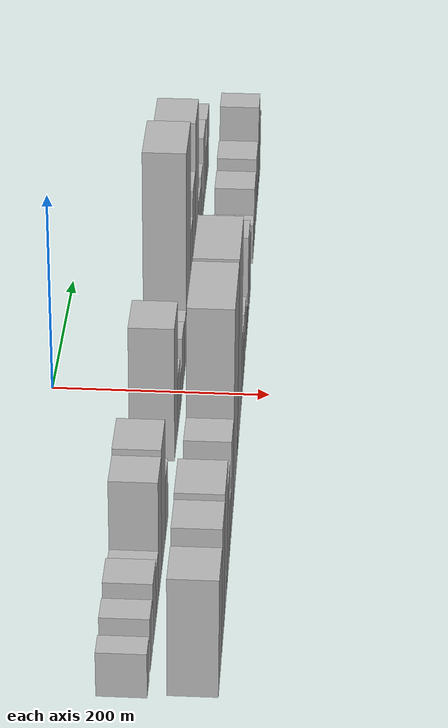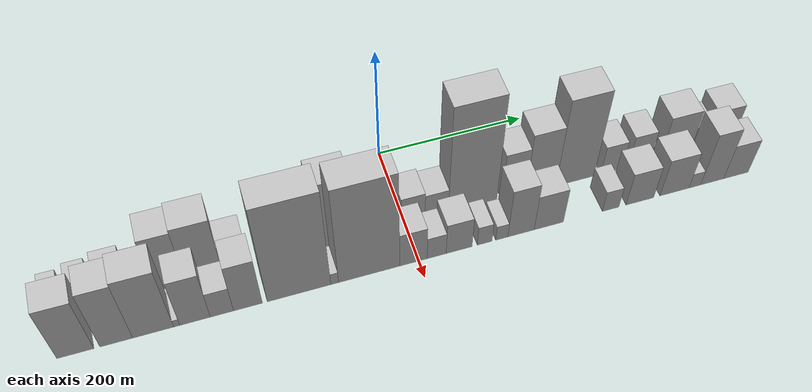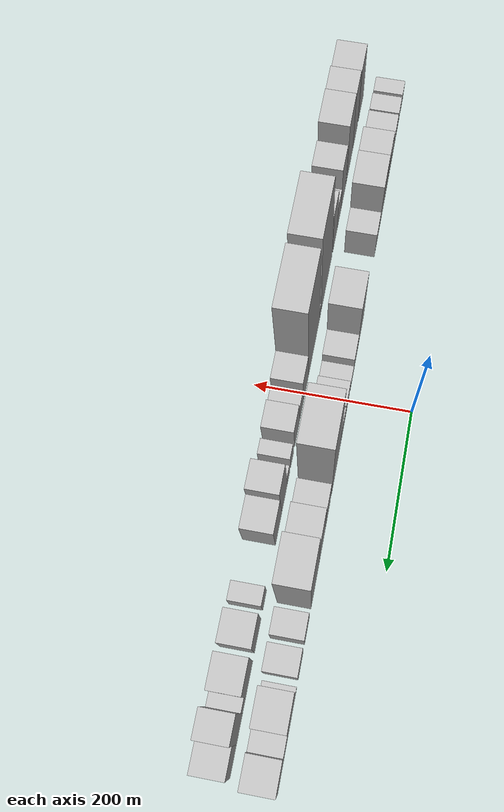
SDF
<sdf version="1.6">
 <world name="default">
  <scene>
   <sky><clouds><speed>12</speed></clouds></sky>
   <ambient>0.4 0.4 0.4 1</ambient>
   <background>0.7 0.7 0.7 1</background>
   <shadows>1</shadows>
  </scene>
  <gravity>0 0 -9.8066</gravity>
  <magnetic_field>6e-06 2.3e-05 -4.2e-05</magnetic_field>
  <physics default="0" name="default_physics" type="ode">
   <ode>
    <solver>
     <type>quick</type>
     <iters>10</iters>
     <sor>1.0</sor>
     <use_dynamic_moi_rescaling>0</use_dynamic_moi_rescaling>
    </solver>
    <constraints>
     <cfm>0</cfm>
     <erp>0.2</erp>
     <contact_max_correcting_vel>100</contact_max_correcting_vel>
     <contact_surface_layer>0.001</contact_surface_layer>
    </constraints>
   </ode>
   <max_step_size>0.004</max_step_size>
   <real_time_factor>1</real_time_factor>
   <real_time_update_rate>250</real_time_update_rate>
  </physics>
  <light name="sun" type="directional">
   <pose>0 0 10 0 0 0</pose>
   <diffuse>0.8 0.8 0.8 1</diffuse>
   <specular>0.2 0.2 0.2 1</specular>
   <attenuation>
    <range>1000</range>
    <constant>0.9</constant>
    <linear>0.01</linear>
    <quadratic>0.001</quadratic>
   </attenuation>
   <direction>-0.5 0.1 -0.9</direction>
  </light>
  <model name="building_1">
   <static>1</static>
   <pose>100.0000 -438.6478 0 0.000000 0.000000 0.000000</pose>
   <link name="link">
    <pose>0 0 21.00 0 0 0</pose>
    <collision name="collision"><geometry><box><size>40.0000 22.7043 42.0000</size></box></geometry></collision>
    <visual name="visual">
     <cast_shadows>0</cast_shadows>
     <geometry><box><size>40.0000 22.7043 42.0000</size></box></geometry>
     <material>
      <script>
       <uri>model://HANNAS_wall/materials/scripts</uri>
       <uri>model://HANNAS_wall/materials/textures</uri>
       <name>vrc/HANNAS_wall</name>
      </script>
     </material>
    </visual>
   </link>
  </model>
  <model name="building_2">
   <static>1</static>
   <pose>100.0000 -404.3533 0 0.000000 0.000000 0.000000</pose>
   <link name="link">
    <pose>0 0 25.50 0 0 0</pose>
    <collision name="collision"><geometry><box><size>40.0000 25.8848 51.0000</size></box></geometry></collision>
    <visual name="visual">
     <cast_shadows>0</cast_shadows>
     <geometry><box><size>40.0000 25.8848 51.0000</size></box></geometry>
     <material>
      <script>
       <uri>model://HANNAS_wall/materials/scripts</uri>
       <uri>model://HANNAS_wall/materials/textures</uri>
       <name>vrc/HANNAS_wall</name>
      </script>
     </material>
    </visual>
   </link>
  </model>
  <model name="building_3">
   <static>1</static>
   <pose>100.0000 -366.6174 0 0.000000 0.000000 0.000000</pose>
   <link name="link">
    <pose>0 0 30.00 0 0 0</pose>
    <collision name="collision"><geometry><box><size>40.0000 33.5868 60.0000</size></box></geometry></collision>
    <visual name="visual">
     <cast_shadows>0</cast_shadows>
     <geometry><box><size>40.0000 33.5868 60.0000</size></box></geometry>
     <material>
      <script>
       <uri>model://HANNAS_wall/materials/scripts</uri>
       <uri>model://HANNAS_wall/materials/textures</uri>
       <name>vrc/HANNAS_wall</name>
      </script>
     </material>
    </visual>
   </link>
  </model>
  <model name="building_4">
   <static>1</static>
   <pose>100.0000 -335.5202 0 0.000000 0.000000 0.000000</pose>
   <link name="link">
    <pose>0 0 24.00 0 0 0</pose>
    <collision name="collision"><geometry><box><size>40.0000 28.6076 48.0000</size></box></geometry></collision>
    <visual name="visual">
     <cast_shadows>0</cast_shadows>
     <geometry><box><size>40.0000 28.6076 48.0000</size></box></geometry>
     <material>
      <script>
       <uri>model://HANNAS_wall/materials/scripts</uri>
       <uri>model://HANNAS_wall/materials/textures</uri>
       <name>vrc/HANNAS_wall</name>
      </script>
     </material>
    </visual>
   </link>
  </model>
  <model name="building_5">
   <static>1</static>
   <pose>100.0000 -302.0740 0 0.000000 0.000000 0.000000</pose>
   <link name="link">
    <pose>0 0 57.00 0 0 0</pose>
    <collision name="collision"><geometry><box><size>40.0000 38.2849 114.0000</size></box></geometry></collision>
    <visual name="visual">
     <cast_shadows>0</cast_shadows>
     <geometry><box><size>40.0000 38.2849 114.0000</size></box></geometry>
     <material>
      <script>
       <uri>model://HANNAS_wall/materials/scripts</uri>
       <uri>model://HANNAS_wall/materials/textures</uri>
       <name>vrc/HANNAS_wall</name>
      </script>
     </material>
    </visual>
   </link>
  </model>
  <model name="building_6">
   <static>1</static>
   <pose>100.0000 -259.7447 0 0.000000 0.000000 0.000000</pose>
   <link name="link">
    <pose>0 0 60.00 0 0 0</pose>
    <collision name="collision"><geometry><box><size>40.0000 46.3737 120.0000</size></box></geometry></collision>
    <visual name="visual">
     <cast_shadows>0</cast_shadows>
     <geometry><box><size>40.0000 46.3737 120.0000</size></box></geometry>
     <material>
      <script>
       <uri>model://HANNAS_wall/materials/scripts</uri>
       <uri>model://HANNAS_wall/materials/textures</uri>
       <name>vrc/HANNAS_wall</name>
      </script>
     </material>
    </visual>
   </link>
  </model>
  <model name="building_7">
   <static>1</static>
   <pose>100.0000 -219.7180 0 0.000000 0.000000 0.000000</pose>
   <link name="link">
    <pose>0 0 30.00 0 0 0</pose>
    <collision name="collision"><geometry><box><size>40.0000 33.6798 60.0000</size></box></geometry></collision>
    <visual name="visual">
     <cast_shadows>0</cast_shadows>
     <geometry><box><size>40.0000 33.6798 60.0000</size></box></geometry>
     <material>
      <script>
       <uri>model://HANNAS_wall/materials/scripts</uri>
       <uri>model://HANNAS_wall/materials/textures</uri>
       <name>vrc/HANNAS_wall</name>
      </script>
     </material>
    </visual>
   </link>
  </model>
  <model name="building_8">
   <static>1</static>
   <pose>100.0000 -91.8694 0 0.000000 0.000000 0.000000</pose>
   <link name="link">
    <pose>0 0 67.50 0 0 0</pose>
    <collision name="collision"><geometry><box><size>40.0000 48.0058 135.0000</size></box></geometry></collision>
    <visual name="visual">
     <cast_shadows>0</cast_shadows>
     <geometry><box><size>40.0000 48.0058 135.0000</size></box></geometry>
     <material>
      <script>
       <uri>model://HANNAS_wall/materials/scripts</uri>
       <uri>model://HANNAS_wall/materials/textures</uri>
       <name>vrc/HANNAS_wall</name>
      </script>
     </material>
    </visual>
   </link>
  </model>
  <model name="building_9">
   <static>1</static>
   <pose>100.0000 -51.0899 0 0.000000 0.000000 0.000000</pose>
   <link name="link">
    <pose>0 0 28.50 0 0 0</pose>
    <collision name="collision"><geometry><box><size>40.0000 33.5532 57.0000</size></box></geometry></collision>
    <visual name="visual">
     <cast_shadows>0</cast_shadows>
     <geometry><box><size>40.0000 33.5532 57.0000</size></box></geometry>
     <material>
      <script>
       <uri>model://HANNAS_wall/materials/scripts</uri>
       <uri>model://HANNAS_wall/materials/textures</uri>
       <name>vrc/HANNAS_wall</name>
      </script>
     </material>
    </visual>
   </link>
  </model>
  <model name="building_10">
   <static>1</static>
   <pose>100.0000 -23.6254 0 0.000000 0.000000 0.000000</pose>
   <link name="link">
    <pose>0 0 18.00 0 0 0</pose>
    <collision name="collision"><geometry><box><size>40.0000 21.3760 36.0000</size></box></geometry></collision>
    <visual name="visual">
     <cast_shadows>0</cast_shadows>
     <geometry><box><size>40.0000 21.3760 36.0000</size></box></geometry>
     <material>
      <script>
       <uri>model://HANNAS_wall/materials/scripts</uri>
       <uri>model://HANNAS_wall/materials/textures</uri>
       <name>vrc/HANNAS_wall</name>
      </script>
     </material>
    </visual>
   </link>
  </model>
  <model name="building_11">
   <static>1</static>
   <pose>100.0000 9.8752 0 0.000000 0.000000 0.000000</pose>
   <link name="link">
    <pose>0 0 30.00 0 0 0</pose>
    <collision name="collision"><geometry><box><size>40.0000 31.6250 60.0000</size></box></geometry></collision>
    <visual name="visual">
     <cast_shadows>0</cast_shadows>
     <geometry><box><size>40.0000 31.6250 60.0000</size></box></geometry>
     <material>
      <script>
       <uri>model://HANNAS_wall/materials/scripts</uri>
       <uri>model://HANNAS_wall/materials/textures</uri>
       <name>vrc/HANNAS_wall</name>
      </script>
     </material>
    </visual>
   </link>
  </model>
  <model name="building_12">
   <static>1</static>
   <pose>100.0000 41.3546 0 0.000000 0.000000 0.000000</pose>
   <link name="link">
    <pose>0 0 27.00 0 0 0</pose>
    <collision name="collision"><geometry><box><size>40.0000 31.3338 54.0000</size></box></geometry></collision>
    <visual name="visual">
     <cast_shadows>0</cast_shadows>
     <geometry><box><size>40.0000 31.3338 54.0000</size></box></geometry>
     <material>
      <script>
       <uri>model://HANNAS_wall/materials/scripts</uri>
       <uri>model://HANNAS_wall/materials/textures</uri>
       <name>vrc/HANNAS_wall</name>
      </script>
     </material>
    </visual>
   </link>
  </model>
  <model name="building_13">
   <static>1</static>
   <pose>100.0000 89.9207 0 0.000000 0.000000 0.000000</pose>
   <link name="link">
    <pose>0 0 108.00 0 0 0</pose>
    <collision name="collision"><geometry><box><size>40.0000 65.7983 216.0000</size></box></geometry></collision>
    <visual name="visual">
     <cast_shadows>0</cast_shadows>
     <geometry><box><size>40.0000 65.7983 216.0000</size></box></geometry>
     <material>
      <script>
       <uri>model://HANNAS_wall/materials/scripts</uri>
       <uri>model://HANNAS_wall/materials/textures</uri>
       <name>vrc/HANNAS_wall</name>
      </script>
     </material>
    </visual>
   </link>
  </model>
  <model name="building_14">
   <static>1</static>
   <pose>100.0000 146.4319 0 0.000000 0.000000 0.000000</pose>
   <link name="link">
    <pose>0 0 48.00 0 0 0</pose>
    <collision name="collision"><geometry><box><size>40.0000 33.2240 96.0000</size></box></geometry></collision>
    <visual name="visual">
     <cast_shadows>0</cast_shadows>
     <geometry><box><size>40.0000 33.2240 96.0000</size></box></geometry>
     <material>
      <script>
       <uri>model://HANNAS_wall/materials/scripts</uri>
       <uri>model://HANNAS_wall/materials/textures</uri>
       <name>vrc/HANNAS_wall</name>
      </script>
     </material>
    </visual>
   </link>
  </model>
  <model name="building_15">
   <static>1</static>
   <pose>100.0000 184.0171 0 0.000000 0.000000 0.000000</pose>
   <link name="link">
    <pose>0 0 61.50 0 0 0</pose>
    <collision name="collision"><geometry><box><size>40.0000 41.9464 123.0000</size></box></geometry></collision>
    <visual name="visual">
     <cast_shadows>0</cast_shadows>
     <geometry><box><size>40.0000 41.9464 123.0000</size></box></geometry>
     <material>
      <script>
       <uri>model://HANNAS_wall/materials/scripts</uri>
       <uri>model://HANNAS_wall/materials/textures</uri>
       <name>vrc/HANNAS_wall</name>
      </script>
     </material>
    </visual>
   </link>
  </model>
  <model name="building_16">
   <static>1</static>
   <pose>100.0000 231.9052 0 0.000000 0.000000 0.000000</pose>
   <link name="link">
    <pose>0 0 87.00 0 0 0</pose>
    <collision name="collision"><geometry><box><size>40.0000 53.8299 174.0000</size></box></geometry></collision>
    <visual name="visual">
     <cast_shadows>0</cast_shadows>
     <geometry><box><size>40.0000 53.8299 174.0000</size></box></geometry>
     <material>
      <script>
       <uri>model://HANNAS_wall/materials/scripts</uri>
       <uri>model://HANNAS_wall/materials/textures</uri>
       <name>vrc/HANNAS_wall</name>
      </script>
     </material>
    </visual>
   </link>
  </model>
  <model name="building_17">
   <static>1</static>
   <pose>100.0000 284.2796 0 0.000000 0.000000 0.000000</pose>
   <link name="link">
    <pose>0 0 28.50 0 0 0</pose>
    <collision name="collision"><geometry><box><size>40.0000 30.9188 57.0000</size></box></geometry></collision>
    <visual name="visual">
     <cast_shadows>0</cast_shadows>
     <geometry><box><size>40.0000 30.9188 57.0000</size></box></geometry>
     <material>
      <script>
       <uri>model://HANNAS_wall/materials/scripts</uri>
       <uri>model://HANNAS_wall/materials/textures</uri>
       <name>vrc/HANNAS_wall</name>
      </script>
     </material>
    </visual>
   </link>
  </model>
  <model name="building_18">
   <static>1</static>
   <pose>100.0000 323.6369 0 0.000000 0.000000 0.000000</pose>
   <link name="link">
    <pose>0 0 31.50 0 0 0</pose>
    <collision name="collision"><geometry><box><size>40.0000 31.7958 63.0000</size></box></geometry></collision>
    <visual name="visual">
     <cast_shadows>0</cast_shadows>
     <geometry><box><size>40.0000 31.7958 63.0000</size></box></geometry>
     <material>
      <script>
       <uri>model://HANNAS_wall/materials/scripts</uri>
       <uri>model://HANNAS_wall/materials/textures</uri>
       <name>vrc/HANNAS_wall</name>
      </script>
     </material>
    </visual>
   </link>
  </model>
  <model name="building_19">
   <static>1</static>
   <pose>100.0000 351.0465 0 0.000000 0.000000 0.000000</pose>
   <link name="link">
    <pose>0 0 7.50 0 0 0</pose>
    <collision name="collision"><geometry><box><size>40.0000 7.0234 15.0000</size></box></geometry></collision>
    <visual name="visual">
     <cast_shadows>0</cast_shadows>
     <geometry><box><size>40.0000 7.0234 15.0000</size></box></geometry>
     <material>
      <script>
       <uri>model://HANNAS_wall/materials/scripts</uri>
       <uri>model://HANNAS_wall/materials/textures</uri>
       <name>vrc/HANNAS_wall</name>
      </script>
     </material>
    </visual>
   </link>
  </model>
  <model name="building_20">
   <static>1</static>
   <pose>100.0000 376.5104 0 0.000000 0.000000 0.000000</pose>
   <link name="link">
    <pose>0 0 42.00 0 0 0</pose>
    <collision name="collision"><geometry><box><size>40.0000 43.9043 84.0000</size></box></geometry></collision>
    <visual name="visual">
     <cast_shadows>0</cast_shadows>
     <geometry><box><size>40.0000 43.9043 84.0000</size></box></geometry>
     <material>
      <script>
       <uri>model://HANNAS_wall/materials/scripts</uri>
       <uri>model://HANNAS_wall/materials/textures</uri>
       <name>vrc/HANNAS_wall</name>
      </script>
     </material>
    </visual>
   </link>
  </model>
  <model name="building_21">
   <static>1</static>
   <pose>100.0000 410.7275 0 0.000000 0.000000 0.000000</pose>
   <link name="link">
    <pose>0 0 24.00 0 0 0</pose>
    <collision name="collision"><geometry><box><size>40.0000 24.5299 48.0000</size></box></geometry></collision>
    <visual name="visual">
     <cast_shadows>0</cast_shadows>
     <geometry><box><size>40.0000 24.5299 48.0000</size></box></geometry>
     <material>
      <script>
       <uri>model://HANNAS_wall/materials/scripts</uri>
       <uri>model://HANNAS_wall/materials/textures</uri>
       <name>vrc/HANNAS_wall</name>
      </script>
     </material>
    </visual>
   </link>
  </model>
  <model name="building_22">
   <static>1</static>
   <pose>100.0000 442.3982 0 0.000000 0.000000 0.000000</pose>
   <link name="link">
    <pose>0 0 36.00 0 0 0</pose>
    <collision name="collision"><geometry><box><size>40.0000 38.8115 72.0000</size></box></geometry></collision>
    <visual name="visual">
     <cast_shadows>0</cast_shadows>
     <geometry><box><size>40.0000 38.8115 72.0000</size></box></geometry>
     <material>
      <script>
       <uri>model://HANNAS_wall/materials/scripts</uri>
       <uri>model://HANNAS_wall/materials/textures</uri>
       <name>vrc/HANNAS_wall</name>
      </script>
     </material>
    </visual>
   </link>
  </model>
  <model name="building_23">
   <static>1</static>
   <pose>155.0000 -424.3160 0 0.000000 0.000000 0.000000</pose>
   <link name="link">
    <pose>0 0 55.50 0 0 0</pose>
    <collision name="collision"><geometry><box><size>40.0000 43.3680 111.0000</size></box></geometry></collision>
    <visual name="visual">
     <cast_shadows>0</cast_shadows>
     <geometry><box><size>40.0000 43.3680 111.0000</size></box></geometry>
     <material>
      <script>
       <uri>model://HANNAS_wall/materials/scripts</uri>
       <uri>model://HANNAS_wall/materials/textures</uri>
       <name>vrc/HANNAS_wall</name>
      </script>
     </material>
    </visual>
   </link>
  </model>
  <model name="building_24">
   <static>1</static>
   <pose>155.0000 -376.1511 0 0.000000 0.000000 0.000000</pose>
   <link name="link">
    <pose>0 0 61.50 0 0 0</pose>
    <collision name="collision"><geometry><box><size>40.0000 38.9617 123.0000</size></box></geometry></collision>
    <visual name="visual">
     <cast_shadows>0</cast_shadows>
     <geometry><box><size>40.0000 38.9617 123.0000</size></box></geometry>
     <material>
      <script>
       <uri>model://HANNAS_wall/materials/scripts</uri>
       <uri>model://HANNAS_wall/materials/textures</uri>
       <name>vrc/HANNAS_wall</name>
      </script>
     </material>
    </visual>
   </link>
  </model>
  <model name="building_25">
   <static>1</static>
   <pose>155.0000 -332.1930 0 0.000000 0.000000 0.000000</pose>
   <link name="link">
    <pose>0 0 64.50 0 0 0</pose>
    <collision name="collision"><geometry><box><size>40.0000 48.9547 129.0000</size></box></geometry></collision>
    <visual name="visual">
     <cast_shadows>0</cast_shadows>
     <geometry><box><size>40.0000 48.9547 129.0000</size></box></geometry>
     <material>
      <script>
       <uri>model://HANNAS_wall/materials/scripts</uri>
       <uri>model://HANNAS_wall/materials/textures</uri>
       <name>vrc/HANNAS_wall</name>
      </script>
     </material>
    </visual>
   </link>
  </model>
  <model name="building_26">
   <static>1</static>
   <pose>155.0000 -304.0631 0 0.000000 0.000000 0.000000</pose>
   <link name="link">
    <pose>0 0 7.50 0 0 0</pose>
    <collision name="collision"><geometry><box><size>40.0000 7.3051 15.0000</size></box></geometry></collision>
    <visual name="visual">
     <cast_shadows>0</cast_shadows>
     <geometry><box><size>40.0000 7.3051 15.0000</size></box></geometry>
     <material>
      <script>
       <uri>model://HANNAS_wall/materials/scripts</uri>
       <uri>model://HANNAS_wall/materials/textures</uri>
       <name>vrc/HANNAS_wall</name>
      </script>
     </material>
    </visual>
   </link>
  </model>
  <model name="building_27">
   <static>1</static>
   <pose>155.0000 -281.8388 0 0.000000 0.000000 0.000000</pose>
   <link name="link">
    <pose>0 0 49.50 0 0 0</pose>
    <collision name="collision"><geometry><box><size>40.0000 37.1433 99.0000</size></box></geometry></collision>
    <visual name="visual">
     <cast_shadows>0</cast_shadows>
     <geometry><box><size>40.0000 37.1433 99.0000</size></box></geometry>
     <material>
      <script>
       <uri>model://HANNAS_wall/materials/scripts</uri>
       <uri>model://HANNAS_wall/materials/textures</uri>
       <name>vrc/HANNAS_wall</name>
      </script>
     </material>
    </visual>
   </link>
  </model>
  <model name="building_28">
   <static>1</static>
   <pose>155.0000 -249.0591 0 0.000000 0.000000 0.000000</pose>
   <link name="link">
    <pose>0 0 27.00 0 0 0</pose>
    <collision name="collision"><geometry><box><size>40.0000 28.4162 54.0000</size></box></geometry></collision>
    <visual name="visual">
     <cast_shadows>0</cast_shadows>
     <geometry><box><size>40.0000 28.4162 54.0000</size></box></geometry>
     <material>
      <script>
       <uri>model://HANNAS_wall/materials/scripts</uri>
       <uri>model://HANNAS_wall/materials/textures</uri>
       <name>vrc/HANNAS_wall</name>
      </script>
     </material>
    </visual>
   </link>
  </model>
  <model name="building_29">
   <static>1</static>
   <pose>155.0000 -217.0314 0 0.000000 0.000000 0.000000</pose>
   <link name="link">
    <pose>0 0 49.50 0 0 0</pose>
    <collision name="collision"><geometry><box><size>40.0000 35.6392 99.0000</size></box></geometry></collision>
    <visual name="visual">
     <cast_shadows>0</cast_shadows>
     <geometry><box><size>40.0000 35.6392 99.0000</size></box></geometry>
     <material>
      <script>
       <uri>model://HANNAS_wall/materials/scripts</uri>
       <uri>model://HANNAS_wall/materials/textures</uri>
       <name>vrc/HANNAS_wall</name>
      </script>
     </material>
    </visual>
   </link>
  </model>
  <model name="building_30">
   <static>1</static>
   <pose>155.0000 -153.2824 0 0.000000 0.000000 0.000000</pose>
   <link name="link">
    <pose>0 0 100.50 0 0 0</pose>
    <collision name="collision"><geometry><box><size>40.0000 79.8588 201.0000</size></box></geometry></collision>
    <visual name="visual">
     <cast_shadows>0</cast_shadows>
     <geometry><box><size>40.0000 79.8588 201.0000</size></box></geometry>
     <material>
      <script>
       <uri>model://HANNAS_wall/materials/scripts</uri>
       <uri>model://HANNAS_wall/materials/textures</uri>
       <name>vrc/HANNAS_wall</name>
      </script>
     </material>
    </visual>
   </link>
  </model>
  <model name="building_31">
   <static>1</static>
   <pose>155.0000 -108.4346 0 0.000000 0.000000 0.000000</pose>
   <link name="link">
    <pose>0 0 12.00 0 0 0</pose>
    <collision name="collision"><geometry><box><size>40.0000 9.8368 24.0000</size></box></geometry></collision>
    <visual name="visual">
     <cast_shadows>0</cast_shadows>
     <geometry><box><size>40.0000 9.8368 24.0000</size></box></geometry>
     <material>
      <script>
       <uri>model://HANNAS_wall/materials/scripts</uri>
       <uri>model://HANNAS_wall/materials/textures</uri>
       <name>vrc/HANNAS_wall</name>
      </script>
     </material>
    </visual>
   </link>
  </model>
  <model name="building_32">
   <static>1</static>
   <pose>155.0000 -64.1178 0 0.000000 0.000000 0.000000</pose>
   <link name="link">
    <pose>0 0 99.00 0 0 0</pose>
    <collision name="collision"><geometry><box><size>40.0000 78.7969 198.0000</size></box></geometry></collision>
    <visual name="visual">
     <cast_shadows>0</cast_shadows>
     <geometry><box><size>40.0000 78.7969 198.0000</size></box></geometry>
     <material>
      <script>
       <uri>model://HANNAS_wall/materials/scripts</uri>
       <uri>model://HANNAS_wall/materials/textures</uri>
       <name>vrc/HANNAS_wall</name>
      </script>
     </material>
    </visual>
   </link>
  </model>
  <model name="building_33">
   <static>1</static>
   <pose>155.0000 -6.9493 0 0.000000 0.000000 0.000000</pose>
   <link name="link">
    <pose>0 0 34.50 0 0 0</pose>
    <collision name="collision"><geometry><box><size>40.0000 35.5400 69.0000</size></box></geometry></collision>
    <visual name="visual">
     <cast_shadows>0</cast_shadows>
     <geometry><box><size>40.0000 35.5400 69.0000</size></box></geometry>
     <material>
      <script>
       <uri>model://HANNAS_wall/materials/scripts</uri>
       <uri>model://HANNAS_wall/materials/textures</uri>
       <name>vrc/HANNAS_wall</name>
      </script>
     </material>
    </visual>
   </link>
  </model>
  <model name="building_34">
   <static>1</static>
   <pose>155.0000 23.3013 0 0.000000 0.000000 0.000000</pose>
   <link name="link">
    <pose>0 0 22.50 0 0 0</pose>
    <collision name="collision"><geometry><box><size>40.0000 24.9613 45.0000</size></box></geometry></collision>
    <visual name="visual">
     <cast_shadows>0</cast_shadows>
     <geometry><box><size>40.0000 24.9613 45.0000</size></box></geometry>
     <material>
      <script>
       <uri>model://HANNAS_wall/materials/scripts</uri>
       <uri>model://HANNAS_wall/materials/textures</uri>
       <name>vrc/HANNAS_wall</name>
      </script>
     </material>
    </visual>
   </link>
  </model>
  <model name="building_35">
   <static>1</static>
   <pose>155.0000 52.9590 0 0.000000 0.000000 0.000000</pose>
   <link name="link">
    <pose>0 0 31.50 0 0 0</pose>
    <collision name="collision"><geometry><box><size>40.0000 34.3541 63.0000</size></box></geometry></collision>
    <visual name="visual">
     <cast_shadows>0</cast_shadows>
     <geometry><box><size>40.0000 34.3541 63.0000</size></box></geometry>
     <material>
      <script>
       <uri>model://HANNAS_wall/materials/scripts</uri>
       <uri>model://HANNAS_wall/materials/textures</uri>
       <name>vrc/HANNAS_wall</name>
      </script>
     </material>
    </visual>
   </link>
  </model>
  <model name="building_36">
   <static>1</static>
   <pose>155.0000 86.9186 0 0.000000 0.000000 0.000000</pose>
   <link name="link">
    <pose>0 0 19.50 0 0 0</pose>
    <collision name="collision"><geometry><box><size>40.0000 19.5653 39.0000</size></box></geometry></collision>
    <visual name="visual">
     <cast_shadows>0</cast_shadows>
     <geometry><box><size>40.0000 19.5653 39.0000</size></box></geometry>
     <material>
      <script>
       <uri>model://HANNAS_wall/materials/scripts</uri>
       <uri>model://HANNAS_wall/materials/textures</uri>
       <name>vrc/HANNAS_wall</name>
      </script>
     </material>
    </visual>
   </link>
  </model>
  <model name="building_37">
   <static>1</static>
   <pose>155.0000 109.8330 0 0.000000 0.000000 0.000000</pose>
   <link name="link">
    <pose>0 0 15.00 0 0 0</pose>
    <collision name="collision"><geometry><box><size>40.0000 16.2634 30.0000</size></box></geometry></collision>
    <visual name="visual">
     <cast_shadows>0</cast_shadows>
     <geometry><box><size>40.0000 16.2634 30.0000</size></box></geometry>
     <material>
      <script>
       <uri>model://HANNAS_wall/materials/scripts</uri>
       <uri>model://HANNAS_wall/materials/textures</uri>
       <name>vrc/HANNAS_wall</name>
      </script>
     </material>
    </visual>
   </link>
  </model>
  <model name="building_38">
   <static>1</static>
   <pose>155.0000 135.7820 0 0.000000 0.000000 0.000000</pose>
   <link name="link">
    <pose>0 0 49.50 0 0 0</pose>
    <collision name="collision"><geometry><box><size>40.0000 35.6346 99.0000</size></box></geometry></collision>
    <visual name="visual">
     <cast_shadows>0</cast_shadows>
     <geometry><box><size>40.0000 35.6346 99.0000</size></box></geometry>
     <material>
      <script>
       <uri>model://HANNAS_wall/materials/scripts</uri>
       <uri>model://HANNAS_wall/materials/textures</uri>
       <name>vrc/HANNAS_wall</name>
      </script>
     </material>
    </visual>
   </link>
  </model>
  <model name="building_39">
   <static>1</static>
   <pose>155.0000 173.5366 0 0.000000 0.000000 0.000000</pose>
   <link name="link">
    <pose>0 0 36.00 0 0 0</pose>
    <collision name="collision"><geometry><box><size>40.0000 39.8746 72.0000</size></box></geometry></collision>
    <visual name="visual">
     <cast_shadows>0</cast_shadows>
     <geometry><box><size>40.0000 39.8746 72.0000</size></box></geometry>
     <material>
      <script>
       <uri>model://HANNAS_wall/materials/scripts</uri>
       <uri>model://HANNAS_wall/materials/textures</uri>
       <name>vrc/HANNAS_wall</name>
      </script>
     </material>
    </visual>
   </link>
  </model>
  <model name="building_40">
   <static>1</static>
   <pose>155.0000 259.0171 0 0.000000 0.000000 0.000000</pose>
   <link name="link">
    <pose>0 0 21.00 0 0 0</pose>
    <collision name="collision"><geometry><box><size>40.0000 23.0288 42.0000</size></box></geometry></collision>
    <visual name="visual">
     <cast_shadows>0</cast_shadows>
     <geometry><box><size>40.0000 23.0288 42.0000</size></box></geometry>
     <material>
      <script>
       <uri>model://HANNAS_wall/materials/scripts</uri>
       <uri>model://HANNAS_wall/materials/textures</uri>
       <name>vrc/HANNAS_wall</name>
      </script>
     </material>
    </visual>
   </link>
  </model>
  <model name="building_41">
   <static>1</static>
   <pose>155.0000 299.9711 0 0.000000 0.000000 0.000000</pose>
   <link name="link">
    <pose>0 0 33.00 0 0 0</pose>
    <collision name="collision"><geometry><box><size>40.0000 38.8792 66.0000</size></box></geometry></collision>
    <visual name="visual">
     <cast_shadows>0</cast_shadows>
     <geometry><box><size>40.0000 38.8792 66.0000</size></box></geometry>
     <material>
      <script>
       <uri>model://HANNAS_wall/materials/scripts</uri>
       <uri>model://HANNAS_wall/materials/textures</uri>
       <name>vrc/HANNAS_wall</name>
      </script>
     </material>
    </visual>
   </link>
  </model>
  <model name="building_42">
   <static>1</static>
   <pose>155.0000 349.0415 0 0.000000 0.000000 0.000000</pose>
   <link name="link">
    <pose>0 0 37.50 0 0 0</pose>
    <collision name="collision"><geometry><box><size>40.0000 41.2617 75.0000</size></box></geometry></collision>
    <visual name="visual">
     <cast_shadows>0</cast_shadows>
     <geometry><box><size>40.0000 41.2617 75.0000</size></box></geometry>
     <material>
      <script>
       <uri>model://HANNAS_wall/materials/scripts</uri>
       <uri>model://HANNAS_wall/materials/textures</uri>
       <name>vrc/HANNAS_wall</name>
      </script>
     </material>
    </visual>
   </link>
  </model>
  <model name="building_43">
   <static>1</static>
   <pose>155.0000 378.0566 0 0.000000 0.000000 0.000000</pose>
   <link name="link">
    <pose>0 0 15.00 0 0 0</pose>
    <collision name="collision"><geometry><box><size>40.0000 16.7684 30.0000</size></box></geometry></collision>
    <visual name="visual">
     <cast_shadows>0</cast_shadows>
     <geometry><box><size>40.0000 16.7684 30.0000</size></box></geometry>
     <material>
      <script>
       <uri>model://HANNAS_wall/materials/scripts</uri>
       <uri>model://HANNAS_wall/materials/textures</uri>
       <name>vrc/HANNAS_wall</name>
      </script>
     </material>
    </visual>
   </link>
  </model>
  <model name="building_44">
   <static>1</static>
   <pose>155.0000 403.0473 0 0.000000 0.000000 0.000000</pose>
   <link name="link">
    <pose>0 0 52.50 0 0 0</pose>
    <collision name="collision"><geometry><box><size>40.0000 33.2130 105.0000</size></box></geometry></collision>
    <visual name="visual">
     <cast_shadows>0</cast_shadows>
     <geometry><box><size>40.0000 33.2130 105.0000</size></box></geometry>
     <material>
      <script>
       <uri>model://HANNAS_wall/materials/scripts</uri>
       <uri>model://HANNAS_wall/materials/textures</uri>
       <name>vrc/HANNAS_wall</name>
      </script>
     </material>
    </visual>
   </link>
  </model>
  <model name="building_45">
   <static>1</static>
   <pose>155.0000 437.5576 0 0.000000 0.000000 0.000000</pose>
   <link name="link">
    <pose>0 0 34.50 0 0 0</pose>
    <collision name="collision"><geometry><box><size>40.0000 35.8076 69.0000</size></box></geometry></collision>
    <visual name="visual">
     <cast_shadows>0</cast_shadows>
     <geometry><box><size>40.0000 35.8076 69.0000</size></box></geometry>
     <material>
      <script>
       <uri>model://HANNAS_wall/materials/scripts</uri>
       <uri>model://HANNAS_wall/materials/textures</uri>
       <name>vrc/HANNAS_wall</name>
      </script>
     </material>
    </visual>
   </link>
  </model>
 </world>
</sdf>
